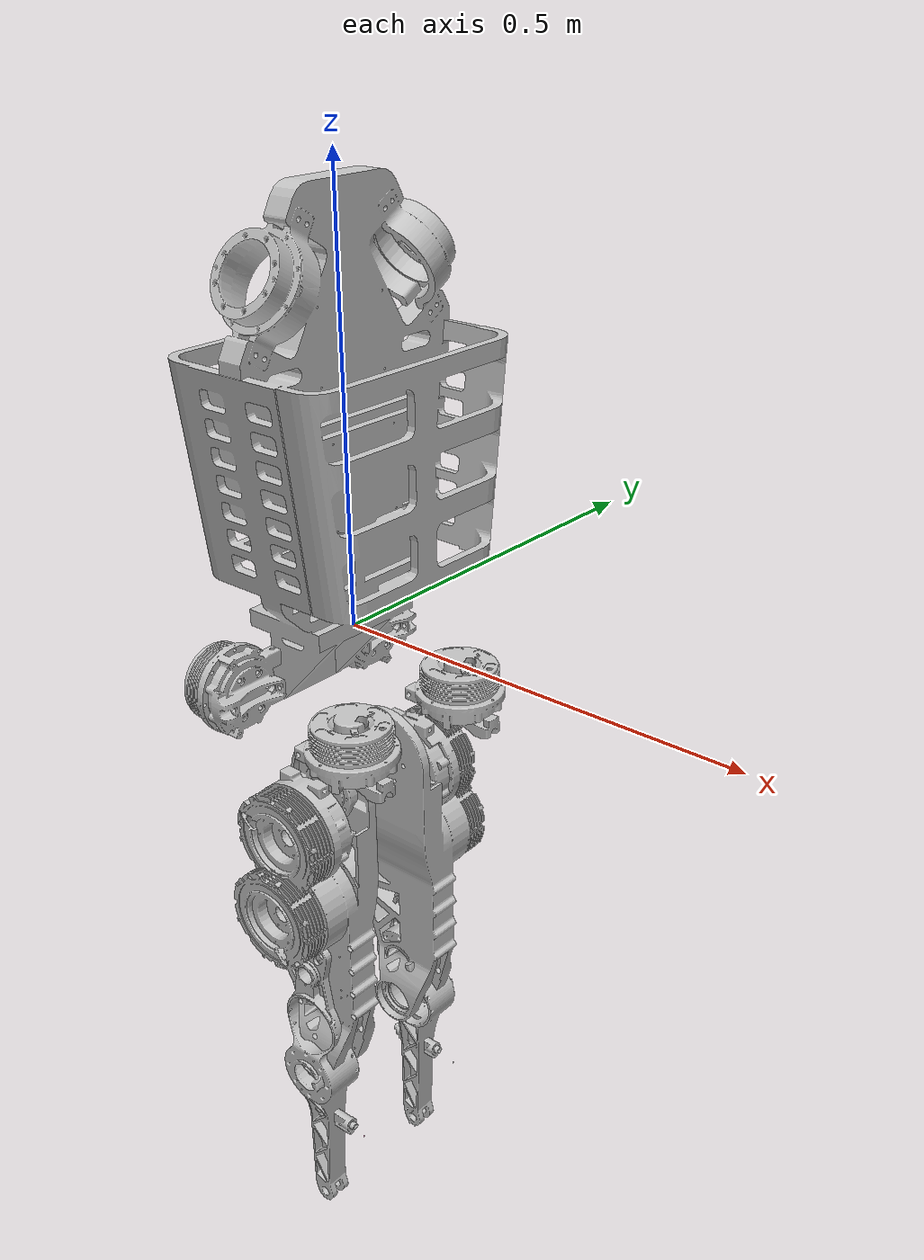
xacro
<?xml version="1.0" encoding="utf-8"?>
<robot xmlns:xacro="http://www.ros.org/wiki/xacro" name="hunter">

  <gazebo>
    <plugin name="gazebo_ros_control" filename="libhunter_bipedal_hw_sim.so">
      <robotNamespace>/</robotNamespace>
      <robotParam>legged_robot_description</robotParam>
      <robotSimType>legged_gazebo/LeggedHWSim</robotSimType>
    </plugin>
  </gazebo>

  <gazebo>
    <plugin filename="libgazebo_ros_p3d.so" name="p3d_base_controller">
      <alwaysOn>true</alwaysOn>
      <updateRate>500.0</updateRate>
      <bodyName>base_link</bodyName>
      <topicName>ground_truth/state</topicName>
      <gaussianNoise>0</gaussianNoise>
      <frameName>world</frameName>
      <xyzOffsets>0 0 0</xyzOffsets>
      <rpyOffsets>0 0 0</rpyOffsets>
    </plugin>
  </gazebo>

  <link name="base_link">
    <inertial>
      <origin xyz="-0.010856 -0.000068 -0.007128" rpy="0 0 0" />
      <mass value="5.673631" />
      <inertia ixx="0.034403" ixy="0.000004" ixz="-0.002587" iyy="0.029652" iyz="0.000024" izz="0.029462" />
    </inertial>
    <visual>
      <origin xyz="0 0 0" rpy="0 0 0" />
      <geometry>
        <mesh
        filename="package://legged_hunter_description/meshes/base_link.STL" />
      </geometry>
      <material name="">
        <color rgba="0.75294 0.75294 0.75294 1" />
      </material>
    </visual>
    <collision>
      <origin xyz="-0.01 0 -0.006" rpy="0 0 0" />
      <geometry>
        <box size="0.184 0.15 0.2" />
      </geometry>
    </collision>
  </link>

  <!-- Imu is fixed to the base link -->
  <joint name="imu_joint" type="fixed">
    <origin rpy="0. 0. 0." xyz="0. 0. 0"/>
    <parent link="base_link"/>
    <child link="imu_link"/>
  </joint>
  <!-- Imu link -->
  <link name="imu_link">
    <inertial>
      <mass value="0.01"/>
      <origin rpy="0 0 0" xyz="0 0 0"/>
      <inertia ixx="0.000001" ixy="0" ixz="0" iyy="0.000001" iyz="0" izz="0.000001"/>
    </inertial>
    <visual>
      <origin rpy="0 0 0" xyz="0 0 0"/>
      <geometry>
        <box size="0.015 0.015 0.004"/>
      </geometry>
    </visual>
    <material name="orange">
      <color rgba="255 108 10 255"/>
    </material>
  </link>
  <gazebo reference="imu_joint">
    <disableFixedJointLumping>true</disableFixedJointLumping>
  </gazebo>

  <!-- ************************ Left Leg ************************** -->

  <!-- ************* part 1 *************** -->
  <joint name="leg_l1_joint" type="revolute">
    <origin xyz="-0.002 0.09 -0.1035" rpy="0 0 0" />
    <parent link="base_link" />
    <child link="leg_l1_link" />
    <axis xyz="1 0 0" />
    <dynamics damping="0.00" friction="0.2"/>
    <limit lower="-0.2" upper="0.5" effort="23.7" velocity="30.1" />
  </joint>
  <link name="leg_l1_link">
    <inertial>
      <origin xyz="0.002501 0.000053 -0.002722" rpy="0 0 0" />
      <mass value="0.453728" />
      <inertia ixx="0.000082" ixy="0.000000" ixz="0.000003" iyy="0.000163" iyz="0.000001" izz="0.000147" />
    </inertial>
    <visual>
      <origin xyz="0 0 0" rpy="0 0 0" />
      <geometry>
        <mesh filename="package://legged_hunter_description/meshes/leg_l1_link.STL" />
      </geometry>
      <material name="">
        <color rgba="0.75294 0.75294 0.75294 1" />
      </material>
    </visual>
    <collision>
      <origin xyz="-0.019 -0.001 0" rpy="1.57 0 1.57" />
      <geometry>
        <box size="0.06 0.07 0.155" />
      </geometry>
    </collision>
  </link>

  <!-- ************* part 2 *************** -->
  <joint name="leg_l2_joint" type="revolute">
    <origin xyz="0 -0.00016972 -0.0325" rpy="0 0 0" />
    <parent link="leg_l1_link" />
    <child link="leg_l2_link" />
    <axis xyz="0 0 1" />
    <dynamics damping="0.00" friction="0.2"/>
    <limit lower="-0.5" upper="1" effort="23.7" velocity="30.1" />
  </joint>
  <link name="leg_l2_link">
    <inertial>
     <origin xyz="-0.000273 0.043826 -0.058639" rpy="0 0 0" />
      <mass value="0.925998" />
      <inertia ixx="0.001239" ixy="0.000004" ixz="0.000000" iyy="0.001646" iyz="0.000103" izz="0.001094" />
    </inertial>
    <visual>
      <origin xyz="0 0 0" rpy="0 0 0" />
      <geometry>
        <mesh filename="package://legged_hunter_description/meshes/leg_l2_link.STL" />
      </geometry>
      <material name="">
        <color rgba="0.75294 0.75294 0.75294 1" />
      </material>
    </visual>
    <collision>
      <origin xyz="0 0.0046 -0.057" rpy="1.57 0 0" />
      <geometry>
        <cylinder length="0.146" radius="0.065"/>
      </geometry>
    </collision>
  </link>

  <!-- ************* part 3 *************** -->
  <joint name="leg_l3_joint" type="revolute">
    <origin xyz="0 -0.01433 -0.0575" rpy="0 0 0" />
    <parent link="leg_l2_link" />
    <child link="leg_l3_link" />
    <axis xyz="0 -1 0" />
    <dynamics damping="0.00" friction="0.2"/>
    <limit lower="-0.8" upper="1.2" effort="23.7" velocity="30.1" />
  </joint>
  <link name="leg_l3_link">
    <inertial>
     <origin xyz="0.003163 -0.022552 -0.027258" rpy="0 0 0" />
      <mass value="1.390468" />
      <inertia ixx="0.006911" ixy="-0.000091" ixz="0.000427" iyy="0.007083" iyz="0.000844" izz="0.001984" />
    </inertial>
    <visual>
      <origin xyz="0 0 0" rpy="0 0 0" />
      <geometry>
        <mesh filename="package://legged_hunter_description/meshes/leg_l3_link.STL" />
      </geometry>
      <material name="">
        <color rgba="0.75294 0.75294 0.75294 1" />
      </material>
    </visual>
    <collision>
      <origin xyz="0.015 0.02 -0.1" rpy="1.57 0 0" />
      <geometry>
        <box size="0.06 0.25 0.05" />
      </geometry>
    </collision>
  </link>

  <!-- ************* part 4 *************** -->
  <joint name="leg_l4_joint" type="revolute">
    <origin xyz="0 0.0145 -0.24" rpy="0 0 0" />
    <parent link="leg_l3_link" />
    <child link="leg_l4_link" />
    <axis xyz="0 1 0" />
    <dynamics damping="0.00" friction="0.2"/>
    <limit lower="0" upper="1.5" effort="23.7" velocity="30.1" />
  </joint>
  <link name="leg_l4_link">
    <inertial>
      <origin xyz="-0.012044 0.006361 -0.093905" rpy="0 0 0" />
      <mass value="0.649518" />
      <inertia ixx="0.002176" ixy="-0.000020" ixz="-0.000273" iyy="0.002460" iyz="-0.000095" izz="0.000478" />
    </inertial>
    <visual>
      <origin xyz="0 0 0" rpy="0 0 0" />
      <geometry>
        <mesh filename="package://legged_hunter_description/meshes/leg_l4_link.STL" />
      </geometry>
      <material name="">
        <color rgba="0.75294 0.75294 0.75294 1" />
      </material>
    </visual>
    <collision>
      <origin xyz="0 0 -0.105" rpy="1.57 0 0" />
      <geometry>
        <box size="0.041 0.25 0.03" />
      </geometry>
    </collision>
    <collision>
      <origin xyz="-0.011 0.012 -0.079" rpy="1.57 0 0" />
      <geometry>
        <cylinder length="0.07" radius="0.034"/>
      </geometry>
    </collision>
  </link>

  <!-- ************* part 5 *************** -->
  <joint name="leg_l5_joint" type="revolute">
    <origin xyz="0.005 0 -0.23995" rpy="0 0 0" />
    <parent link="leg_l4_link" />
    <child link="leg_l5_link" />
    <axis xyz="0 -1 0" />
    <dynamics damping="0.00" friction="0.2"/>
    <limit lower="-1.1" upper="1.1" effort="23.7" velocity="30.1" />
  </joint>
  <link name="leg_l5_link">
    <inertial>
      <origin xyz="0.012435 0.000000 -0.015511" rpy="0 0 0" />
      <mass value="0.030265" />
      <inertia ixx="0.000002" ixy="0.000000" ixz="0.000001" iyy="0.000025" iyz="0.000000" izz="0.000024" />
    </inertial>
    <visual>
      <origin xyz="0 0 0" rpy="0 0 0" />
      <geometry>
        <mesh filename="package://legged_hunter_description/meshes/leg_l5_link.STL" />
      </geometry>
      <material name="">
        <color rgba="0.75294 0.75294 0.75294 1" />
      </material>
    </visual>
    <collision>
      <origin xyz="0.01503 0 -0.0102" rpy="1.57 0 0" />
      <geometry>
        <box size="0.1001 0.0345 0.0175" />
      </geometry>
    </collision>
  </link>

  <joint name="leg_l5_fixed_1" type="fixed">
    <origin xyz="0.06 0 -0.007" rpy="0 0 0" />
    <parent link="leg_l5_link" />
    <child link="leg_l_f1_link" />
  </joint>
  <link name="leg_l_f1_link">
    <inertial>
      <mass value="0.01" />
      <inertia ixx="0.000001" ixy="0" ixz="0" iyy="0.000001" iyz="0" izz="0.000001" />
    </inertial>
    <visual>
      <origin rpy="0 0 0" xyz="0 0 0"/>
      <geometry>
        <sphere radius="0.001"/>
      </geometry>
    </visual>
    <collision>
      <origin rpy="0 0 0" xyz="0 0 0"/>
      <geometry>
        <sphere radius="0.001"/>
      </geometry>
    </collision>
  </link>

  <joint name="leg_l5_fixed_2" type="fixed">
    <origin xyz="-0.030 0 -0.007" rpy="0 0 0" />
    <parent link="leg_l5_link" />
    <child link="leg_l_f2_link" />
  </joint>
  <link name="leg_l_f2_link">
    <inertial>
      <mass value="0.01" />
      <inertia ixx="0.000001" ixy="0" ixz="0" iyy="0.000001" iyz="0" izz="0.000001" />
    </inertial>
    <visual>
      <origin rpy="0 0 0" xyz="0 0 0"/>
      <geometry>
        <sphere radius="0.001"/>
      </geometry>
    </visual>
    <collision>
      <origin rpy="0 0 0" xyz="-0 0 0"/>
      <geometry>
        <sphere radius="0.001"/>
      </geometry>
    </collision>
  </link>

  <gazebo reference="leg_l1_link">
    <mu1>0.6</mu1>
    <mu2>0.6</mu2>
    <self_collide>1</self_collide>
  </gazebo>
  <gazebo reference="leg_l2_link">
    <mu1>0.6</mu1>
    <mu2>0.6</mu2>
    <self_collide>1</self_collide>
  </gazebo>
  <gazebo reference="leg_l3_link">
    <mu1>0.6</mu1>
    <mu2>0.6</mu2>
    <self_collide>1</self_collide>
  </gazebo>
  <gazebo reference="leg_l4_link">
    <mu1>0.6</mu1>
    <mu2>0.6</mu2>
    <self_collide>1</self_collide>
  </gazebo>
  <gazebo reference="leg_l5_link">
    <mu1>1.5</mu1>
    <mu2>1.5</mu2>
    <self_collide>1</self_collide>
    <kp value="1000000.0"/>
    <kd value="100.0"/>
    <maxVel>1.0</maxVel>
    <minDepth>0.00</minDepth>
  </gazebo>
  <gazebo reference="leg_l_f1_link">
    <mu1>1.5</mu1>
    <mu2>1.5</mu2>
    <self_collide>1</self_collide>
    <kp value="1000000.0"/>
    <kd value="100.0"/>
    <maxVel>1.0</maxVel>
    <minDepth>0.00</minDepth>
  </gazebo>
  <gazebo reference="leg_l_f2_link">
    <mu1>1.5</mu1>
    <mu2>1.5</mu2>
    <self_collide>1</self_collide>
    <kp value="1000000.0"/>
    <kd value="100.0"/>
    <maxVel>1.0</maxVel>
    <minDepth>0.00</minDepth>
  </gazebo>

  <transmission name="leg_l1_tran">
    <type>transmission_interface/SimpleTransmission</type>
    <joint name="leg_l1_joint">
      <hardwareInterface>hardware_interface/EffortJointInterface</hardwareInterface>
    </joint>
    <actuator name="leg_l1_motor">
      <hardwareInterface>hardware_interface/EffortJointInterface</hardwareInterface>
      <mechanicalReduction>1</mechanicalReduction>
    <maxVelocity>1.484</maxVelocity><!-- 85rpm -->
	  <maxEffort>36.0</maxEffort><!-- 36Nm -->
    </actuator>
  </transmission>

  <transmission name="leg_l2_tran">
    <type>transmission_interface/SimpleTransmission</type>
    <joint name="leg_l2_joint">
      <hardwareInterface>hardware_interface/EffortJointInterface</hardwareInterface>
    </joint>
    <actuator name="leg_l2_motor">
      <hardwareInterface>hardware_interface/EffortJointInterface</hardwareInterface>
      <mechanicalReduction>1</mechanicalReduction>
    <maxVelocity>2.6545</maxVelocity><!-- 160rpm -->
	  <maxEffort>94.0</maxEffort><!-- 94Nm -->
    </actuator>
  </transmission>

  <transmission name="leg_l3_tran">
    <type>transmission_interface/SimpleTransmission</type>
    <joint name="leg_l3_joint">
      <hardwareInterface>hardware_interface/EffortJointInterface</hardwareInterface>
    </joint>
    <actuator name="leg_l3_motor">
      <hardwareInterface>hardware_interface/EffortJointInterface</hardwareInterface>
      <mechanicalReduction>1</mechanicalReduction>
    <maxVelocity>2.6545</maxVelocity><!-- 160rpm -->
	  <maxEffort>94.0</maxEffort><!-- 94Nm -->
    </actuator>
  </transmission>

  <transmission name="leg_l4_tran">
    <type>transmission_interface/SimpleTransmission</type>
    <joint name="leg_l4_joint">
      <hardwareInterface>hardware_interface/EffortJointInterface</hardwareInterface>
    </joint>
    <actuator name="leg_l4_motor">
      <hardwareInterface>hardware_interface/EffortJointInterface</hardwareInterface>
      <mechanicalReduction>1</mechanicalReduction>
    <maxVelocity>1.484</maxVelocity><!-- 85rpm -->
	<maxEffort>36.0</maxEffort><!-- 36Nm -->
    </actuator>
  </transmission>

  <transmission name="leg_l5_tran">
    <type>transmission_interface/SimpleTransmission</type>
    <joint name="leg_l5_joint">
      <hardwareInterface>hardware_interface/EffortJointInterface</hardwareInterface>
    </joint>
    <actuator name="leg_l5_motor">
      <hardwareInterface>hardware_interface/EffortJointInterface</hardwareInterface>
      <mechanicalReduction>1</mechanicalReduction>
    </actuator>
  </transmission>
  <!-- ************************ Right Leg ************************** -->

  <!-- ************* part 1 *************** -->
  <joint name="leg_r1_joint" type="revolute">
    <origin xyz="-0.002 -0.09 -0.1035" rpy="0 0 0" />
    <parent link="base_link" />
    <child link="leg_r1_link" />
    <axis xyz="1 0 0" />
    <dynamics damping="0.00" friction="0.2"/>
    <limit lower="-0.5" upper="0.2" effort="23.7" velocity="30.1" />
  </joint>
  <link name="leg_r1_link">
    <inertial>
      <origin xyz="0.002501 -0.000053 -0.002722" rpy="0 0 0" />
      <mass value="0.453728" />
      <inertia ixx="0.000082" ixy="0.000000" ixz="0.000003" iyy="0.000163" iyz="-0.000001" izz="0.000147" />
    </inertial>
    <visual>
      <origin xyz="0 0 0" rpy="0 0 0" />
      <geometry>
        <mesh filename="package://legged_hunter_description/meshes/leg_r1_link.STL" />
      </geometry>
      <material name="">
        <color rgba="0.75294 0.75294 0.75294 1" />
      </material>
    </visual>
    <collision>
      <origin xyz="-0.019 -0.001 0" rpy="1.57 0 1.57" />
      <geometry>
        <box size="0.06 0.07 0.155" />
      </geometry>
    </collision>
  </link>

  <!-- ************* part 2 *************** -->
  <joint name="leg_r2_joint" type="revolute">
    <origin xyz="0 0.00016972 -0.0325" rpy="0 0 0" />
    <parent link="leg_r1_link" />
    <child link="leg_r2_link" />
    <axis xyz="0 0 1" />
    <dynamics damping="0.00" friction="0.2"/>
    <limit lower="-1" upper="0.5" effort="23.7" velocity="30.1" />
  </joint>
  <link name="leg_r2_link">
    <inertial>
     <origin xyz="0.000090 -0.043826 -0.058639" rpy="0 0 0" />
      <mass value="0.925998" />
      <inertia ixx="0.001239" ixy="0.000004" ixz="0.000000" iyy="0.001646" iyz="0.000103" izz="0.001094" />
    </inertial>
    <visual>
      <origin xyz="0 0 0" rpy="0 0 0" />
      <geometry>
        <mesh filename="package://legged_hunter_description/meshes/leg_r2_link.STL" />
      </geometry>
      <material name="">
        <color rgba="0.75294 0.75294 0.75294 1" />
      </material>
    </visual>
    <collision>
      <origin xyz="0 -0.0033 -0.057" rpy="1.57 0 0" />
      <geometry>
        <cylinder length="0.146" radius="0.065"/>
      </geometry>
    </collision>
  </link>

  <!-- ************* part 3 *************** -->
  <joint name="leg_r3_joint" type="revolute">
    <origin xyz="0 0.01633 -0.0575" rpy="0 0 0" />
    <parent link="leg_r2_link" />
    <child link="leg_r3_link" />
    <axis xyz="0 1 0" />
    <dynamics damping="0.00" friction="0.2"/>
    <limit lower="-1.2" upper="0.8" effort="23.7" velocity="30.1" />
  </joint>
  <link name="leg_r3_link">
    <inertial>
     <origin xyz="0.003311 0.022650 -0.027271" rpy="0 0 0" />
      <mass value="1.388625" />
      <inertia ixx="0.006909" ixy="0.000095" ixz="0.000421" iyy="0.007083" iyz="-0.000850" izz="0.001984" />
    </inertial>
    <visual>
      <origin xyz="0 0 0" rpy="0 0 0" />
      <geometry>
        <mesh filename="package://legged_hunter_description/meshes/leg_r3_link.STL" />
      </geometry>
      <material name="">
        <color rgba="0.75294 0.75294 0.75294 1" />
      </material>
    </visual>
    <collision>
      <origin xyz="0.015 -0.02 -0.1" rpy="1.57 0 0" />
      <geometry>
        <box size="0.06 0.25 0.05" />
      </geometry>
    </collision>
  </link>

  <!-- ************* part 4 *************** -->
  <joint name="leg_r4_joint" type="revolute">
    <origin xyz="0 -0.0145 -0.24" rpy="0 0 0" />
    <parent link="leg_r3_link" />
    <child link="leg_r4_link" />
   <axis xyz="0 1 0" />
   <dynamics damping="0.00" friction="0.2"/>
    <limit lower="0" upper="1.5" effort="23.7" velocity="30.1" />
  </joint>
  <link name="leg_r4_link">
    <inertial>
       <origin xyz="-0.007886 -0.007123 -0.088091" rpy="0 0 0" />
      <mass value="0.614720" />
      <inertia ixx="0.001761" ixy="-0.000006" ixz="0.000012" iyy="0.001774" iyz="0.000063" izz="0.000186" />
    </inertial>
    <visual>
      <origin xyz="0 0 0" rpy="0 0 0" />
      <geometry>
        <mesh filename="package://legged_hunter_description/meshes/leg_r4_link.STL" />
      </geometry>
      <material name="">
        <color rgba="0.75294 0.75294 0.75294 1" />
      </material>
    </visual>
    <collision>
      <origin xyz="0 0 -0.105" rpy="1.57 0 0" />
      <geometry>
        <box size="0.041 0.25 0.03" />
      </geometry>
    </collision>
    <collision>
      <origin xyz="-0.011 -0.012 -0.079" rpy="1.57 0 0" />
      <geometry>
        <cylinder length="0.07" radius="0.034"/>
      </geometry>
    </collision>
  </link>

  <!-- ************* part 5 *************** -->
  <joint name="leg_r5_joint" type="revolute">
    <origin xyz="0.005 0 -0.23995" rpy="0 0 0" />
    <parent link="leg_r4_link" />
    <child link="leg_r5_link" />
    <axis xyz="0 1 0" />
    <dynamics damping="0.00" friction="0.2"/>
    <limit lower="-1.1" upper="1.1" effort="23.7" velocity="30.1" />
  </joint>
  <link name="leg_r5_link">
    <inertial>
      <origin xyz="0.012435 -0.000500 -0.015511" rpy="0 0 0" />
      <mass value="0.030265" />
      <inertia ixx="0.000002" ixy="0.000000" ixz="0.000001" iyy="0.000025" iyz="0.000000" izz="0.000024" />
    </inertial>
    <visual>
      <origin xyz="0 0 0" rpy="0 0 0" />
      <geometry>
        <mesh filename="package://legged_hunter_description/meshes/leg_r5_link.STL" />
      </geometry>
      <material name="">
        <color rgba="0.75294 0.75294 0.75294 1" />
      </material>
    </visual>
    <collision>
      <origin xyz="0.01503 0 -0.0102" rpy="1.57 0 0" />
      <geometry>
        <box size="0.1001 0.0345 0.0175" />
        </geometry>
    </collision>
  </link>

  <joint name="leg_r5_fixed_1" type="fixed">
    <origin xyz="0.06 0 -0.007" rpy="0 0 0" />
    <parent link="leg_r5_link" />
    <child link="leg_r_f1_link" />
  </joint>
  <link name="leg_r_f1_link">
    <inertial>
      <mass value="0.01" />
      <inertia ixx="0.000001" ixy="0" ixz="0" iyy="0.000001" iyz="0" izz="0.000001" />
    </inertial>
    <visual>
      <origin rpy="0 0 0" xyz="0 0 0"/>
      <geometry>
        <sphere radius="0.001"/>
      </geometry>
    </visual>
    <collision>
      <origin rpy="0 0 0" xyz="0 0 0"/>
      <geometry>
        <sphere radius="0.001"/>
      </geometry>
    </collision>
  </link>

  <joint name="leg_r5_fixed_2" type="fixed">
    <origin xyz="-0.030 0 -0.007" rpy="0 0 0" />
    <parent link="leg_r5_link" />
    <child link="leg_r_f2_link" />
  </joint>
  <link name="leg_r_f2_link">
    <inertial>
      <mass value="0.01" />
      <inertia ixx="0.000001" ixy="0" ixz="0" iyy="0.000001" iyz="0" izz="0.000001" />
    </inertial>
    <visual>
      <origin rpy="0 0 0" xyz="0 0 0"/>
      <geometry>
        <sphere radius="0.001"/>
      </geometry>
    </visual>
    <collision>
      <origin rpy="0 0 0" xyz="0 0 0"/>
      <geometry>
        <sphere radius="0.001"/>
      </geometry>
    </collision>
  </link>

  <gazebo reference="leg_r1_link">
    <mu1>0.6</mu1>
    <mu2>0.6</mu2>
    <self_collide>1</self_collide>
  </gazebo>
  <gazebo reference="leg_r2_link">
    <mu1>0.6</mu1>
    <mu2>0.6</mu2>
    <self_collide>1</self_collide>
  </gazebo>
  <gazebo reference="leg_r3_link">
    <mu1>0.6</mu1>
    <mu2>0.6</mu2>
    <self_collide>1</self_collide>
  </gazebo>
  <gazebo reference="leg_r4_link">
    <mu1>0.6</mu1>
    <mu2>0.6</mu2>
    <self_collide>1</self_collide>
  </gazebo>
  <gazebo reference="leg_r5_link">
    <mu1>1.5</mu1>
    <mu2>1.5</mu2>
    <self_collide>1</self_collide>
    <kp value="1000000.0"/>
    <kd value="100.0"/>
    <maxVel>1.0</maxVel>
    <minDepth>0.00</minDepth>
  </gazebo>
  <gazebo reference="leg_r_f1_link">
    <mu1>1.5</mu1>
    <mu2>1.5</mu2>
    <self_collide>1</self_collide>
    <kp value="1000000.0"/>
    <kd value="100.0"/>
    <maxVel>1.0</maxVel>
    <minDepth>0.00</minDepth>
  </gazebo>
  <gazebo reference="leg_r_f2_link">
    <mu1>1.5</mu1>
    <mu2>1.5</mu2>
    <self_collide>1</self_collide>
    <kp value="1000000.0"/>
    <kd value="100.0"/>
    <maxVel>1.0</maxVel>
    <minDepth>0.00</minDepth>
  </gazebo>

  <transmission name="leg_r1_tran">
    <type>transmission_interface/SimpleTransmission</type>
    <joint name="leg_r1_joint">
      <hardwareInterface>hardware_interface/EffortJointInterface</hardwareInterface>
    </joint>
    <actuator name="leg_r1_motor">
      <hardwareInterface>hardware_interface/EffortJointInterface</hardwareInterface>
      <mechanicalReduction>1</mechanicalReduction>
      	  <maxVelocity>1.484</maxVelocity><!-- 85rpm -->
	<maxEffort>36.0</maxEffort><!-- 36Nm -->
    </actuator>
  </transmission>

  <transmission name="leg_r2_tran">
    <type>transmission_interface/SimpleTransmission</type>
    <joint name="leg_r2_joint">
      <hardwareInterface>hardware_interface/EffortJointInterface</hardwareInterface>
    </joint>
    <actuator name="leg_r2_motor">
      <hardwareInterface>hardware_interface/EffortJointInterface</hardwareInterface>
      <mechanicalReduction>1</mechanicalReduction>
      	  <maxVelocity>2.6545</maxVelocity><!-- 160rpm -->
	  <maxEffort>94.0</maxEffort><!-- 94Nm -->
    </actuator>
  </transmission>

  <transmission name="leg_r3_tran">
    <type>transmission_interface/SimpleTransmission</type>
    <joint name="leg_r3_joint">
      <hardwareInterface>hardware_interface/EffortJointInterface</hardwareInterface>
    </joint>
    <actuator name="leg_r3_motor">
      <hardwareInterface>hardware_interface/EffortJointInterface</hardwareInterface>
      <mechanicalReduction>1</mechanicalReduction>
      	  <maxVelocity>2.6545</maxVelocity><!-- 160rpm -->
	  <maxEffort>94.0</maxEffort><!-- 94Nm -->
    </actuator>
  </transmission>

  <transmission name="leg_r4_tran">
    <type>transmission_interface/SimpleTransmission</type>
    <joint name="leg_r4_joint">
      <hardwareInterface>hardware_interface/EffortJointInterface</hardwareInterface>
    </joint>
    <actuator name="leg_r4_motor">
      <hardwareInterface>hardware_interface/EffortJointInterface</hardwareInterface>
      <mechanicalReduction>1</mechanicalReduction>
      	  <maxVelocity>1.484</maxVelocity><!-- 85rpm -->
	<maxEffort>36.0</maxEffort><!-- 36Nm -->
    </actuator>
  </transmission>

  <transmission name="leg_r5_tran">
    <type>transmission_interface/SimpleTransmission</type>
    <joint name="leg_r5_joint">
      <hardwareInterface>hardware_interface/EffortJointInterface</hardwareInterface>
    </joint>
    <actuator name="leg_r5_motor">
      <hardwareInterface>hardware_interface/EffortJointInterface</hardwareInterface>
      <mechanicalReduction>1</mechanicalReduction>
    </actuator>
  </transmission>
</robot>
